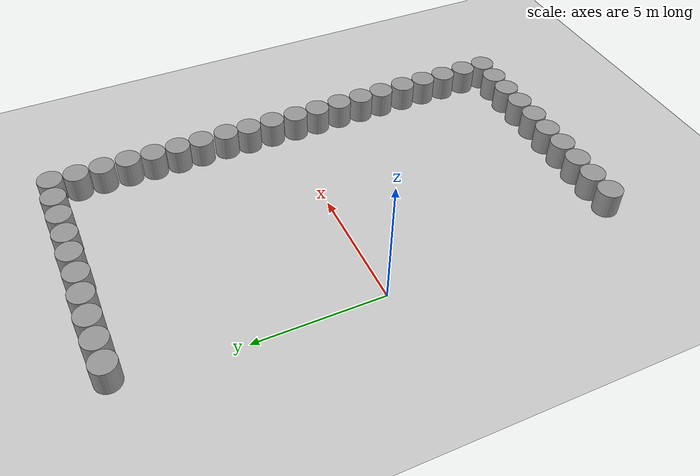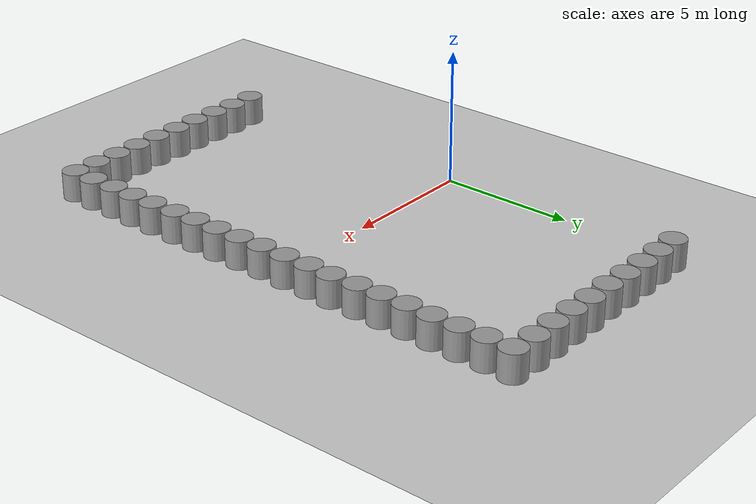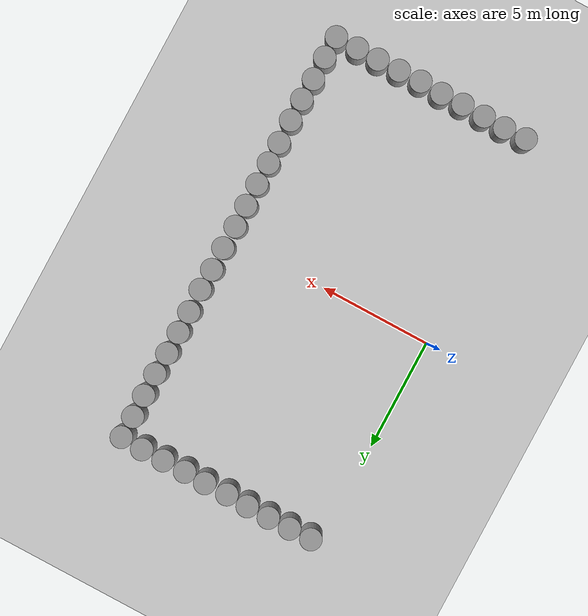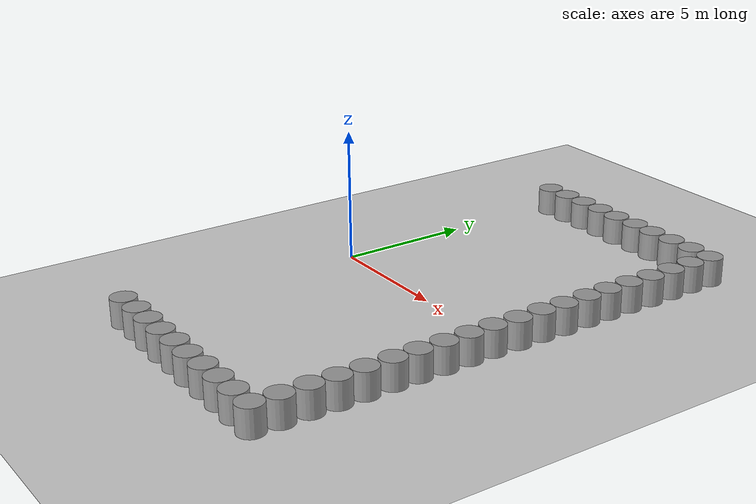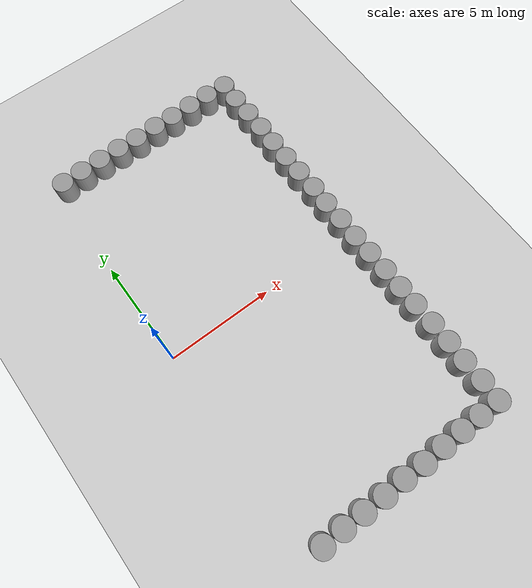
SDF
<sdf version="1.6">
 <world name="default">
  <model name="ground_plane">
   <static>1</static>
   <static>1</static>
   <link name="link">
    <collision name="collision">
     <geometry><plane><normal>0 0 1</normal><size>100 100</size></plane></geometry>
     <surface><friction><ode><mu>100</mu><mu2>50</mu2></ode></friction></surface>
    </collision>
    <visual name="visual">
     <cast_shadows>0</cast_shadows>
     <geometry><plane><normal>0 0 1</normal><size>100 100</size></plane></geometry>
     <material>
      <script><uri>file://media/materials/scripts/gazebo.material</uri><name>Gazebo/Grey</name></script>
     </material>
    </visual>
   </link>
  </model>
  <model name="unit_cylinder_153_clone_clone_34">
   <static>1</static>
   <pose>0.490329 -9.48634 0 0 -0 0</pose>
   <link name="link">
    <inertial>
     <mass>1</mass>
     <inertia><ixx>0.145833</ixx><ixy>0</ixy><ixz>0</ixz><iyy>0.145833</iyy><iyz>0</iyz><izz>0.125</izz></inertia>
    </inertial>
    <collision name="collision">
     <geometry><cylinder><radius>0.484115</radius><length>2.01101</length></cylinder></geometry>
    </collision>
    <visual name="visual">
     <geometry><cylinder><radius>0.484115</radius><length>2.01101</length></cylinder></geometry>
     <material>
      <script><name>Gazebo/Grey</name><uri>file://media/materials/scripts/gazebo.material</uri></script>
     </material>
    </visual>
   </link>
  </model>
  <model name="unit_cylinder_153_clone_clone_35">
   <static>1</static>
   <pose>1.50223 -9.45994 0 0 -0 0</pose>
   <link name="link">
    <inertial>
     <mass>1</mass>
     <inertia><ixx>0.145833</ixx><ixy>0</ixy><ixz>0</ixz><iyy>0.145833</iyy><iyz>0</iyz><izz>0.125</izz></inertia>
    </inertial>
    <collision name="collision">
     <geometry><cylinder><radius>0.484115</radius><length>2.01101</length></cylinder></geometry>
    </collision>
    <visual name="visual">
     <geometry><cylinder><radius>0.484115</radius><length>2.01101</length></cylinder></geometry>
     <material>
      <script><name>Gazebo/Grey</name><uri>file://media/materials/scripts/gazebo.material</uri></script>
     </material>
    </visual>
   </link>
  </model>
  <model name="unit_cylinder_153_clone_clone_36">
   <static>1</static>
   <pose>2.48333 -9.48634 0 0 -0 0</pose>
   <link name="link">
    <inertial>
     <mass>1</mass>
     <inertia><ixx>0.145833</ixx><ixy>0</ixy><ixz>0</ixz><iyy>0.145833</iyy><iyz>0</iyz><izz>0.125</izz></inertia>
    </inertial>
    <collision name="collision">
     <geometry><cylinder><radius>0.484115</radius><length>2.01101</length></cylinder></geometry>
    </collision>
    <visual name="visual">
     <geometry><cylinder><radius>0.484115</radius><length>2.01101</length></cylinder></geometry>
     <material>
      <script><name>Gazebo/Grey</name><uri>file://media/materials/scripts/gazebo.material</uri></script>
     </material>
    </visual>
   </link>
  </model>
  <model name="unit_cylinder_153_clone_clone_37">
   <static>1</static>
   <pose>3.49963 -9.50833 0 0 -0 0</pose>
   <link name="link">
    <inertial>
     <mass>1</mass>
     <inertia><ixx>0.145833</ixx><ixy>0</ixy><ixz>0</ixz><iyy>0.145833</iyy><iyz>0</iyz><izz>0.125</izz></inertia>
    </inertial>
    <collision name="collision">
     <geometry><cylinder><radius>0.484115</radius><length>2.01101</length></cylinder></geometry>
    </collision>
    <visual name="visual">
     <geometry><cylinder><radius>0.484115</radius><length>2.01101</length></cylinder></geometry>
     <material>
      <script><name>Gazebo/Grey</name><uri>file://media/materials/scripts/gazebo.material</uri></script>
     </material>
    </visual>
   </link>
  </model>
  <model name="unit_cylinder_153_clone_clone_38">
   <static>1</static>
   <pose>4.49393 -9.48633 0 0 -0 0</pose>
   <link name="link">
    <inertial>
     <mass>1</mass>
     <inertia><ixx>0.145833</ixx><ixy>0</ixy><ixz>0</ixz><iyy>0.145833</iyy><iyz>0</iyz><izz>0.125</izz></inertia>
    </inertial>
    <collision name="collision">
     <geometry><cylinder><radius>0.484115</radius><length>2.01101</length></cylinder></geometry>
    </collision>
    <visual name="visual">
     <geometry><cylinder><radius>0.484115</radius><length>2.01101</length></cylinder></geometry>
     <material>
      <script><name>Gazebo/Grey</name><uri>file://media/materials/scripts/gazebo.material</uri></script>
     </material>
    </visual>
   </link>
  </model>
  <model name="unit_cylinder_153_clone_clone_39">
   <static>1</static>
   <pose>5.50143 -9.52593 0 0 -0 0</pose>
   <link name="link">
    <inertial>
     <mass>1</mass>
     <inertia><ixx>0.145833</ixx><ixy>0</ixy><ixz>0</ixz><iyy>0.145833</iyy><iyz>0</iyz><izz>0.125</izz></inertia>
    </inertial>
    <collision name="collision">
     <geometry><cylinder><radius>0.484115</radius><length>2.01101</length></cylinder></geometry>
    </collision>
    <visual name="visual">
     <geometry><cylinder><radius>0.484115</radius><length>2.01101</length></cylinder></geometry>
     <material>
      <script><name>Gazebo/Grey</name><uri>file://media/materials/scripts/gazebo.material</uri></script>
     </material>
    </visual>
   </link>
  </model>
  <model name="unit_cylinder_153_clone_clone_40">
   <static>1</static>
   <pose>6.51102 -9.49876 0 0 -0 0</pose>
   <link name="link">
    <inertial>
     <mass>1</mass>
     <inertia><ixx>0.145833</ixx><ixy>0</ixy><ixz>0</ixz><iyy>0.145833</iyy><iyz>0</iyz><izz>0.125</izz></inertia>
    </inertial>
    <collision name="collision">
     <geometry><cylinder><radius>0.484115</radius><length>2.01101</length></cylinder></geometry>
    </collision>
    <visual name="visual">
     <geometry><cylinder><radius>0.484115</radius><length>2.01101</length></cylinder></geometry>
     <material>
      <script><name>Gazebo/Grey</name><uri>file://media/materials/scripts/gazebo.material</uri></script>
     </material>
    </visual>
   </link>
  </model>
  <model name="unit_cylinder_153_clone_clone_41">
   <static>1</static>
   <pose>7.51237 -9.48705 0 0 -0 0</pose>
   <link name="link">
    <inertial>
     <mass>1</mass>
     <inertia><ixx>0.145833</ixx><ixy>0</ixy><ixz>0</ixz><iyy>0.145833</iyy><iyz>0</iyz><izz>0.125</izz></inertia>
    </inertial>
    <collision name="collision">
     <geometry><cylinder><radius>0.484115</radius><length>2.01101</length></cylinder></geometry>
    </collision>
    <visual name="visual">
     <geometry><cylinder><radius>0.484115</radius><length>2.01101</length></cylinder></geometry>
     <material>
      <script><name>Gazebo/Grey</name><uri>file://media/materials/scripts/gazebo.material</uri></script>
     </material>
    </visual>
   </link>
  </model>
  <model name="unit_cylinder_153_clone_clone_42">
   <static>1</static>
   <pose>8.49029 -9.49291 0 0 -0 0</pose>
   <link name="link">
    <inertial>
     <mass>1</mass>
     <inertia><ixx>0.145833</ixx><ixy>0</ixy><ixz>0</ixz><iyy>0.145833</iyy><iyz>0</iyz><izz>0.125</izz></inertia>
    </inertial>
    <collision name="collision">
     <geometry><cylinder><radius>0.484115</radius><length>2.01101</length></cylinder></geometry>
    </collision>
    <visual name="visual">
     <geometry><cylinder><radius>0.484115</radius><length>2.01101</length></cylinder></geometry>
     <material>
      <script><name>Gazebo/Grey</name><uri>file://media/materials/scripts/gazebo.material</uri></script>
     </material>
    </visual>
   </link>
  </model>
  <model name="unit_cylinder_153_clone_clone_43">
   <static>1</static>
   <pose>9.48578 -9.49291 0 0 -0 0</pose>
   <link name="link">
    <inertial>
     <mass>1</mass>
     <inertia><ixx>0.145833</ixx><ixy>0</ixy><ixz>0</ixz><iyy>0.145833</iyy><iyz>0</iyz><izz>0.125</izz></inertia>
    </inertial>
    <collision name="collision">
     <geometry><cylinder><radius>0.484115</radius><length>2.01101</length></cylinder></geometry>
    </collision>
    <visual name="visual">
     <geometry><cylinder><radius>0.484115</radius><length>2.01101</length></cylinder></geometry>
     <material>
      <script><name>Gazebo/Grey</name><uri>file://media/materials/scripts/gazebo.material</uri></script>
     </material>
    </visual>
   </link>
  </model>
  <model name="unit_cylinder_153_clone_clone_44">
   <static>1</static>
   <pose>9.51506 -8.51499 0 0 -0 0</pose>
   <link name="link">
    <inertial>
     <mass>1</mass>
     <inertia><ixx>0.145833</ixx><ixy>0</ixy><ixz>0</ixz><iyy>0.145833</iyy><iyz>0</iyz><izz>0.125</izz></inertia>
    </inertial>
    <collision name="collision">
     <geometry><cylinder><radius>0.484115</radius><length>2.01101</length></cylinder></geometry>
    </collision>
    <visual name="visual">
     <geometry><cylinder><radius>0.484115</radius><length>2.01101</length></cylinder></geometry>
     <material>
      <script><name>Gazebo/Grey</name><uri>file://media/materials/scripts/gazebo.material</uri></script>
     </material>
    </visual>
   </link>
  </model>
  <model name="unit_cylinder_153_clone_clone_45">
   <static>1</static>
   <pose>9.50335 -7.49021 0 0 -0 0</pose>
   <link name="link">
    <inertial>
     <mass>1</mass>
     <inertia><ixx>0.145833</ixx><ixy>0</ixy><ixz>0</ixz><iyy>0.145833</iyy><iyz>0</iyz><izz>0.125</izz></inertia>
    </inertial>
    <collision name="collision">
     <geometry><cylinder><radius>0.484115</radius><length>2.01101</length></cylinder></geometry>
    </collision>
    <visual name="visual">
     <geometry><cylinder><radius>0.484115</radius><length>2.01101</length></cylinder></geometry>
     <material>
      <script><name>Gazebo/Grey</name><uri>file://media/materials/scripts/gazebo.material</uri></script>
     </material>
    </visual>
   </link>
  </model>
  <model name="unit_cylinder_153_clone_clone_46">
   <static>1</static>
   <pose>9.52678 -6.51229 0 0 -0 0</pose>
   <link name="link">
    <inertial>
     <mass>1</mass>
     <inertia><ixx>0.145833</ixx><ixy>0</ixy><ixz>0</ixz><iyy>0.145833</iyy><iyz>0</iyz><izz>0.125</izz></inertia>
    </inertial>
    <collision name="collision">
     <geometry><cylinder><radius>0.484115</radius><length>2.01101</length></cylinder></geometry>
    </collision>
    <visual name="visual">
     <geometry><cylinder><radius>0.484115</radius><length>2.01101</length></cylinder></geometry>
     <material>
      <script><name>Gazebo/Grey</name><uri>file://media/materials/scripts/gazebo.material</uri></script>
     </material>
    </visual>
   </link>
  </model>
  <model name="unit_cylinder_153_clone_clone_47">
   <static>1</static>
   <pose>9.52678 -5.52266 0 0 -0 0</pose>
   <link name="link">
    <inertial>
     <mass>1</mass>
     <inertia><ixx>0.145833</ixx><ixy>0</ixy><ixz>0</ixz><iyy>0.145833</iyy><iyz>0</iyz><izz>0.125</izz></inertia>
    </inertial>
    <collision name="collision">
     <geometry><cylinder><radius>0.484115</radius><length>2.01101</length></cylinder></geometry>
    </collision>
    <visual name="visual">
     <geometry><cylinder><radius>0.484115</radius><length>2.01101</length></cylinder></geometry>
     <material>
      <script><name>Gazebo/Grey</name><uri>file://media/materials/scripts/gazebo.material</uri></script>
     </material>
    </visual>
   </link>
  </model>
  <model name="unit_cylinder_153_clone_clone_48">
   <static>1</static>
   <pose>9.50921 -4.46861 0 0 -0 0</pose>
   <link name="link">
    <inertial>
     <mass>1</mass>
     <inertia><ixx>0.145833</ixx><ixy>0</ixy><ixz>0</ixz><iyy>0.145833</iyy><iyz>0</iyz><izz>0.125</izz></inertia>
    </inertial>
    <collision name="collision">
     <geometry><cylinder><radius>0.484115</radius><length>2.01101</length></cylinder></geometry>
    </collision>
    <visual name="visual">
     <geometry><cylinder><radius>0.484115</radius><length>2.01101</length></cylinder></geometry>
     <material>
      <script><name>Gazebo/Grey</name><uri>file://media/materials/scripts/gazebo.material</uri></script>
     </material>
    </visual>
   </link>
  </model>
  <model name="unit_cylinder_153_clone_clone_49">
   <static>1</static>
   <pose>9.4975 -3.50826 0 0 -0 0</pose>
   <link name="link">
    <inertial>
     <mass>1</mass>
     <inertia><ixx>0.145833</ixx><ixy>0</ixy><ixz>0</ixz><iyy>0.145833</iyy><iyz>0</iyz><izz>0.125</izz></inertia>
    </inertial>
    <collision name="collision">
     <geometry><cylinder><radius>0.484115</radius><length>2.01101</length></cylinder></geometry>
    </collision>
    <visual name="visual">
     <geometry><cylinder><radius>0.484115</radius><length>2.01101</length></cylinder></geometry>
     <material>
      <script><name>Gazebo/Grey</name><uri>file://media/materials/scripts/gazebo.material</uri></script>
     </material>
    </visual>
   </link>
  </model>
  <model name="unit_cylinder_153_clone_clone_50">
   <static>1</static>
   <pose>9.50335 -2.50691 0 0 -0 0</pose>
   <link name="link">
    <inertial>
     <mass>1</mass>
     <inertia><ixx>0.145833</ixx><ixy>0</ixy><ixz>0</ixz><iyy>0.145833</iyy><iyz>0</iyz><izz>0.125</izz></inertia>
    </inertial>
    <collision name="collision">
     <geometry><cylinder><radius>0.484115</radius><length>2.01101</length></cylinder></geometry>
    </collision>
    <visual name="visual">
     <geometry><cylinder><radius>0.484115</radius><length>2.01101</length></cylinder></geometry>
     <material>
      <script><name>Gazebo/Grey</name><uri>file://media/materials/scripts/gazebo.material</uri></script>
     </material>
    </visual>
   </link>
  </model>
  <model name="unit_cylinder_153_clone_clone_51">
   <static>1</static>
   <pose>9.48578 -1.49971 0 0 -0 0</pose>
   <link name="link">
    <inertial>
     <mass>1</mass>
     <inertia><ixx>0.145833</ixx><ixy>0</ixy><ixz>0</ixz><iyy>0.145833</iyy><iyz>0</iyz><izz>0.125</izz></inertia>
    </inertial>
    <collision name="collision">
     <geometry><cylinder><radius>0.484115</radius><length>2.01101</length></cylinder></geometry>
    </collision>
    <visual name="visual">
     <geometry><cylinder><radius>0.484115</radius><length>2.01101</length></cylinder></geometry>
     <material>
      <script><name>Gazebo/Grey</name><uri>file://media/materials/scripts/gazebo.material</uri></script>
     </material>
    </visual>
   </link>
  </model>
  <model name="unit_cylinder_153_clone_clone_52">
   <static>1</static>
   <pose>9.46822 -0.515937 0 0 -0 0</pose>
   <link name="link">
    <inertial>
     <mass>1</mass>
     <inertia><ixx>0.145833</ixx><ixy>0</ixy><ixz>0</ixz><iyy>0.145833</iyy><iyz>0</iyz><izz>0.125</izz></inertia>
    </inertial>
    <collision name="collision">
     <geometry><cylinder><radius>0.484115</radius><length>2.01101</length></cylinder></geometry>
    </collision>
    <visual name="visual">
     <geometry><cylinder><radius>0.484115</radius><length>2.01101</length></cylinder></geometry>
     <material>
      <script><name>Gazebo/Grey</name><uri>file://media/materials/scripts/gazebo.material</uri></script>
     </material>
    </visual>
   </link>
  </model>
  <model name="unit_cylinder_153_clone_clone_53">
   <static>1</static>
   <pose>9.49164 0.514686 0 0 -0 0</pose>
   <link name="link">
    <inertial>
     <mass>1</mass>
     <inertia><ixx>0.145833</ixx><ixy>0</ixy><ixz>0</ixz><iyy>0.145833</iyy><iyz>0</iyz><izz>0.125</izz></inertia>
    </inertial>
    <collision name="collision">
     <geometry><cylinder><radius>0.484115</radius><length>2.01101</length></cylinder></geometry>
    </collision>
    <visual name="visual">
     <geometry><cylinder><radius>0.484115</radius><length>2.01101</length></cylinder></geometry>
     <material>
      <script><name>Gazebo/Grey</name><uri>file://media/materials/scripts/gazebo.material</uri></script>
     </material>
    </visual>
   </link>
  </model>
  <model name="unit_cylinder_153_clone_clone_54">
   <static>1</static>
   <pose>9.47408 1.5336 0 0 -0 0</pose>
   <link name="link">
    <inertial>
     <mass>1</mass>
     <inertia><ixx>0.145833</ixx><ixy>0</ixy><ixz>0</ixz><iyy>0.145833</iyy><iyz>0</iyz><izz>0.125</izz></inertia>
    </inertial>
    <collision name="collision">
     <geometry><cylinder><radius>0.484115</radius><length>2.01101</length></cylinder></geometry>
    </collision>
    <visual name="visual">
     <geometry><cylinder><radius>0.484115</radius><length>2.01101</length></cylinder></geometry>
     <material>
      <script><name>Gazebo/Grey</name><uri>file://media/materials/scripts/gazebo.material</uri></script>
     </material>
    </visual>
   </link>
  </model>
  <model name="unit_cylinder_153_clone_clone_55">
   <static>1</static>
   <pose>9.50921 2.49395 0 0 -0 0</pose>
   <link name="link">
    <inertial>
     <mass>1</mass>
     <inertia><ixx>0.145833</ixx><ixy>0</ixy><ixz>0</ixz><iyy>0.145833</iyy><iyz>0</iyz><izz>0.125</izz></inertia>
    </inertial>
    <collision name="collision">
     <geometry><cylinder><radius>0.484115</radius><length>2.01101</length></cylinder></geometry>
    </collision>
    <visual name="visual">
     <geometry><cylinder><radius>0.484115</radius><length>2.01101</length></cylinder></geometry>
     <material>
      <script><name>Gazebo/Grey</name><uri>file://media/materials/scripts/gazebo.material</uri></script>
     </material>
    </visual>
   </link>
  </model>
  <model name="unit_cylinder_153_clone_clone_56">
   <static>1</static>
   <pose>9.47993 3.54214 0 0 -0 0</pose>
   <link name="link">
    <inertial>
     <mass>1</mass>
     <inertia><ixx>0.145833</ixx><ixy>0</ixy><ixz>0</ixz><iyy>0.145833</iyy><iyz>0</iyz><izz>0.125</izz></inertia>
    </inertial>
    <collision name="collision">
     <geometry><cylinder><radius>0.484115</radius><length>2.01101</length></cylinder></geometry>
    </collision>
    <visual name="visual">
     <geometry><cylinder><radius>0.484115</radius><length>2.01101</length></cylinder></geometry>
     <material>
      <script><name>Gazebo/Grey</name><uri>file://media/materials/scripts/gazebo.material</uri></script>
     </material>
    </visual>
   </link>
  </model>
  <model name="unit_cylinder_153_clone_clone_57">
   <static>1</static>
   <pose>9.46822 4.50835 0 0 -0 0</pose>
   <link name="link">
    <inertial>
     <mass>1</mass>
     <inertia><ixx>0.145833</ixx><ixy>0</ixy><ixz>0</ixz><iyy>0.145833</iyy><iyz>0</iyz><izz>0.125</izz></inertia>
    </inertial>
    <collision name="collision">
     <geometry><cylinder><radius>0.484115</radius><length>2.01101</length></cylinder></geometry>
    </collision>
    <visual name="visual">
     <geometry><cylinder><radius>0.484115</radius><length>2.01101</length></cylinder></geometry>
     <material>
      <script><name>Gazebo/Grey</name><uri>file://media/materials/scripts/gazebo.material</uri></script>
     </material>
    </visual>
   </link>
  </model>
  <model name="unit_cylinder_153_clone_clone_58">
   <static>1</static>
   <pose>9.46822 5.50384 0 0 -0 0</pose>
   <link name="link">
    <inertial>
     <mass>1</mass>
     <inertia><ixx>0.145833</ixx><ixy>0</ixy><ixz>0</ixz><iyy>0.145833</iyy><iyz>0</iyz><izz>0.125</izz></inertia>
    </inertial>
    <collision name="collision">
     <geometry><cylinder><radius>0.484115</radius><length>2.01101</length></cylinder></geometry>
    </collision>
    <visual name="visual">
     <geometry><cylinder><radius>0.484115</radius><length>2.01101</length></cylinder></geometry>
     <material>
      <script><name>Gazebo/Grey</name><uri>file://media/materials/scripts/gazebo.material</uri></script>
     </material>
    </visual>
   </link>
  </model>
  <model name="unit_cylinder_153_clone_clone_59">
   <static>1</static>
   <pose>9.50336 6.49933 0 0 -0 0</pose>
   <link name="link">
    <inertial>
     <mass>1</mass>
     <inertia><ixx>0.145833</ixx><ixy>0</ixy><ixz>0</ixz><iyy>0.145833</iyy><iyz>0</iyz><izz>0.125</izz></inertia>
    </inertial>
    <collision name="collision">
     <geometry><cylinder><radius>0.484115</radius><length>2.01101</length></cylinder></geometry>
    </collision>
    <visual name="visual">
     <geometry><cylinder><radius>0.484115</radius><length>2.01101</length></cylinder></geometry>
     <material>
      <script><name>Gazebo/Grey</name><uri>file://media/materials/scripts/gazebo.material</uri></script>
     </material>
    </visual>
   </link>
  </model>
  <model name="unit_cylinder_153_clone_clone_60">
   <static>1</static>
   <pose>9.49165 7.51238 0 0 -0 0</pose>
   <link name="link">
    <inertial>
     <mass>1</mass>
     <inertia><ixx>0.145833</ixx><ixy>0</ixy><ixz>0</ixz><iyy>0.145833</iyy><iyz>0</iyz><izz>0.125</izz></inertia>
    </inertial>
    <collision name="collision">
     <geometry><cylinder><radius>0.484115</radius><length>2.01101</length></cylinder></geometry>
    </collision>
    <visual name="visual">
     <geometry><cylinder><radius>0.484115</radius><length>2.01101</length></cylinder></geometry>
     <material>
      <script><name>Gazebo/Grey</name><uri>file://media/materials/scripts/gazebo.material</uri></script>
     </material>
    </visual>
   </link>
  </model>
  <model name="unit_cylinder_153_clone_clone_61">
   <static>1</static>
   <pose>9.47408 8.50788 0 0 -0 0</pose>
   <link name="link">
    <inertial>
     <mass>1</mass>
     <inertia><ixx>0.145833</ixx><ixy>0</ixy><ixz>0</ixz><iyy>0.145833</iyy><iyz>0</iyz><izz>0.125</izz></inertia>
    </inertial>
    <collision name="collision">
     <geometry><cylinder><radius>0.484115</radius><length>2.01101</length></cylinder></geometry>
    </collision>
    <visual name="visual">
     <geometry><cylinder><radius>0.484115</radius><length>2.01101</length></cylinder></geometry>
     <material>
      <script><name>Gazebo/Grey</name><uri>file://media/materials/scripts/gazebo.material</uri></script>
     </material>
    </visual>
   </link>
  </model>
  <model name="unit_cylinder_153_clone_clone_62">
   <static>1</static>
   <pose>9.49165 9.4858 0 0 -0 0</pose>
   <link name="link">
    <inertial>
     <mass>1</mass>
     <inertia><ixx>0.145833</ixx><ixy>0</ixy><ixz>0</ixz><iyy>0.145833</iyy><iyz>0</iyz><izz>0.125</izz></inertia>
    </inertial>
    <collision name="collision">
     <geometry><cylinder><radius>0.484115</radius><length>2.01101</length></cylinder></geometry>
    </collision>
    <visual name="visual">
     <geometry><cylinder><radius>0.484115</radius><length>2.01101</length></cylinder></geometry>
     <material>
      <script><name>Gazebo/Grey</name><uri>file://media/materials/scripts/gazebo.material</uri></script>
     </material>
    </visual>
   </link>
  </model>
  <model name="unit_cylinder_153_clone_clone_63">
   <static>1</static>
   <pose>8.49616 9.53265 0 0 -0 0</pose>
   <link name="link">
    <inertial>
     <mass>1</mass>
     <inertia><ixx>0.145833</ixx><ixy>0</ixy><ixz>0</ixz><iyy>0.145833</iyy><iyz>0</iyz><izz>0.125</izz></inertia>
    </inertial>
    <collision name="collision">
     <geometry><cylinder><radius>0.484115</radius><length>2.01101</length></cylinder></geometry>
    </collision>
    <visual name="visual">
     <geometry><cylinder><radius>0.484115</radius><length>2.01101</length></cylinder></geometry>
     <material>
      <script><name>Gazebo/Grey</name><uri>file://media/materials/scripts/gazebo.material</uri></script>
     </material>
    </visual>
   </link>
  </model>
  <model name="unit_cylinder_153_clone_clone_64">
   <static>1</static>
   <pose>7.49481 9.52094 0 0 -0 0</pose>
   <link name="link">
    <inertial>
     <mass>1</mass>
     <inertia><ixx>0.145833</ixx><ixy>0</ixy><ixz>0</ixz><iyy>0.145833</iyy><iyz>0</iyz><izz>0.125</izz></inertia>
    </inertial>
    <collision name="collision">
     <geometry><cylinder><radius>0.484115</radius><length>2.01101</length></cylinder></geometry>
    </collision>
    <visual name="visual">
     <geometry><cylinder><radius>0.484115</radius><length>2.01101</length></cylinder></geometry>
     <material>
      <script><name>Gazebo/Grey</name><uri>file://media/materials/scripts/gazebo.material</uri></script>
     </material>
    </visual>
   </link>
  </model>
  <model name="unit_cylinder_153_clone_clone_65">
   <static>1</static>
   <pose>6.4759 9.50923 0 0 -0 0</pose>
   <link name="link">
    <inertial>
     <mass>1</mass>
     <inertia><ixx>0.145833</ixx><ixy>0</ixy><ixz>0</ixz><iyy>0.145833</iyy><iyz>0</iyz><izz>0.125</izz></inertia>
    </inertial>
    <collision name="collision">
     <geometry><cylinder><radius>0.484115</radius><length>2.01101</length></cylinder></geometry>
    </collision>
    <visual name="visual">
     <geometry><cylinder><radius>0.484115</radius><length>2.01101</length></cylinder></geometry>
     <material>
      <script><name>Gazebo/Grey</name><uri>file://media/materials/scripts/gazebo.material</uri></script>
     </material>
    </visual>
   </link>
  </model>
  <model name="unit_cylinder_153_clone_clone_66">
   <static>1</static>
   <pose>5.50968 9.53266 0 0 -0 0</pose>
   <link name="link">
    <inertial>
     <mass>1</mass>
     <inertia><ixx>0.145833</ixx><ixy>0</ixy><ixz>0</ixz><iyy>0.145833</iyy><iyz>0</iyz><izz>0.125</izz></inertia>
    </inertial>
    <collision name="collision">
     <geometry><cylinder><radius>0.484115</radius><length>2.01101</length></cylinder></geometry>
    </collision>
    <visual name="visual">
     <geometry><cylinder><radius>0.484115</radius><length>2.01101</length></cylinder></geometry>
     <material>
      <script><name>Gazebo/Grey</name><uri>file://media/materials/scripts/gazebo.material</uri></script>
     </material>
    </visual>
   </link>
  </model>
  <model name="unit_cylinder_153_clone_clone_67">
   <static>1</static>
   <pose>4.4732 9.50924 0 0 -0 0</pose>
   <link name="link">
    <inertial>
     <mass>1</mass>
     <inertia><ixx>0.145833</ixx><ixy>0</ixy><ixz>0</ixz><iyy>0.145833</iyy><iyz>0</iyz><izz>0.125</izz></inertia>
    </inertial>
    <collision name="collision">
     <geometry><cylinder><radius>0.484115</radius><length>2.01101</length></cylinder></geometry>
    </collision>
    <visual name="visual">
     <geometry><cylinder><radius>0.484115</radius><length>2.01101</length></cylinder></geometry>
     <material>
      <script><name>Gazebo/Grey</name><uri>file://media/materials/scripts/gazebo.material</uri></script>
     </material>
    </visual>
   </link>
  </model>
  <model name="unit_cylinder_153_clone_clone_68">
   <static>1</static>
   <pose>3.48942 9.54438 0 0 -0 0</pose>
   <link name="link">
    <inertial>
     <mass>1</mass>
     <inertia><ixx>0.145833</ixx><ixy>0</ixy><ixz>0</ixz><iyy>0.145833</iyy><iyz>0</iyz><izz>0.125</izz></inertia>
    </inertial>
    <collision name="collision">
     <geometry><cylinder><radius>0.484115</radius><length>2.01101</length></cylinder></geometry>
    </collision>
    <visual name="visual">
     <geometry><cylinder><radius>0.484115</radius><length>2.01101</length></cylinder></geometry>
     <material>
      <script><name>Gazebo/Grey</name><uri>file://media/materials/scripts/gazebo.material</uri></script>
     </material>
    </visual>
   </link>
  </model>
  <model name="unit_cylinder_153_clone_clone_69">
   <static>1</static>
   <pose>2.48808 9.55023 0 0 -0 0</pose>
   <link name="link">
    <inertial>
     <mass>1</mass>
     <inertia><ixx>0.145833</ixx><ixy>0</ixy><ixz>0</ixz><iyy>0.145833</iyy><iyz>0</iyz><izz>0.125</izz></inertia>
    </inertial>
    <collision name="collision">
     <geometry><cylinder><radius>0.484115</radius><length>2.01101</length></cylinder></geometry>
    </collision>
    <visual name="visual">
     <geometry><cylinder><radius>0.484115</radius><length>2.01101</length></cylinder></geometry>
     <material>
      <script><name>Gazebo/Grey</name><uri>file://media/materials/scripts/gazebo.material</uri></script>
     </material>
    </visual>
   </link>
  </model>
  <model name="unit_cylinder_153_clone_clone_70">
   <static>1</static>
   <pose>1.49259 9.53267 0 0 -0 0</pose>
   <link name="link">
    <inertial>
     <mass>1</mass>
     <inertia><ixx>0.145833</ixx><ixy>0</ixy><ixz>0</ixz><iyy>0.145833</iyy><iyz>0</iyz><izz>0.125</izz></inertia>
    </inertial>
    <collision name="collision">
     <geometry><cylinder><radius>0.484115</radius><length>2.01101</length></cylinder></geometry>
    </collision>
    <visual name="visual">
     <geometry><cylinder><radius>0.484115</radius><length>2.01101</length></cylinder></geometry>
     <material>
      <script><name>Gazebo/Grey</name><uri>file://media/materials/scripts/gazebo.material</uri></script>
     </material>
    </visual>
   </link>
  </model>
  <model name="unit_cylinder_153_clone_clone_71">
   <static>1</static>
   <pose>0.497106 9.50339 0 0 -0 0</pose>
   <link name="link">
    <inertial>
     <mass>1</mass>
     <inertia><ixx>0.145833</ixx><ixy>0</ixy><ixz>0</ixz><iyy>0.145833</iyy><iyz>0</iyz><izz>0.125</izz></inertia>
    </inertial>
    <collision name="collision">
     <geometry><cylinder><radius>0.484115</radius><length>2.01101</length></cylinder></geometry>
    </collision>
    <visual name="visual">
     <geometry><cylinder><radius>0.484115</radius><length>2.01101</length></cylinder></geometry>
     <material>
      <script><name>Gazebo/Grey</name><uri>file://media/materials/scripts/gazebo.material</uri></script>
     </material>
    </visual>
   </link>
  </model>
 </world>
</sdf>
